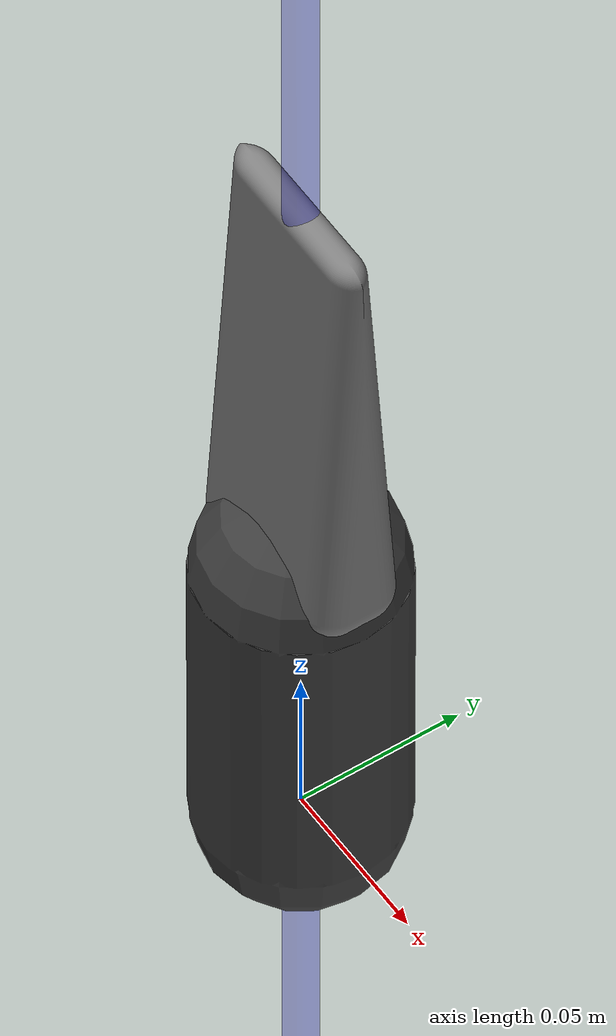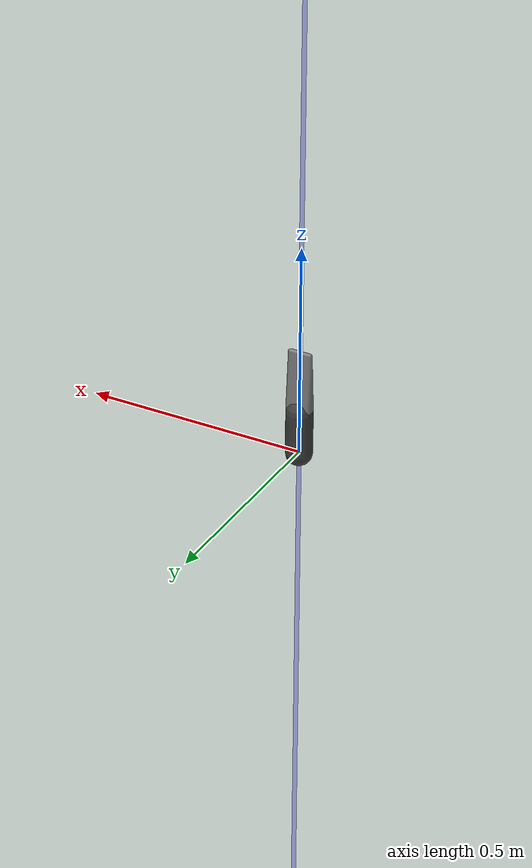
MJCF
<mujoco model="reach_hand">
    <asset>
        <mesh name="paddle" file="meshes/reach_gripper/paddle_gripper.stl" />
    </asset>
    <worldbody>
        <body name="reach_gripper" pos="0 0 0.05" quat="1.0 0 0 0" >
            <site name="ft_frame" pos="0 0 0" size="0.01 0.01 0.01" rgba="1 0 0 1" type="sphere" group="1"/>
            <inertial pos="0 0 0" mass="3e-2" diaginertia="1e-2 1e-2 1e-2"/>
            <geom type="capsule" pos="0 0.0 0.0" size="0.03 0.05" name="reach_link" solimp="0.9 0.95 0.001 0.5 2" solmix="10000" solref="0.005 1" group="1" rgba="0.25 0.25 0.25 1" />
            <body name="paddle" pos="0 0 0.05" quat="0.7071068 0 0 0.7071068">
                <inertial pos="0 0 0.02" mass="0.1" diaginertia="0.01 0.01 0.005" />
                <geom type="mesh" contype="0" conaffinity="0" group="1" mesh="paddle" name="ee_visual" rgba="0.499 0.499 0.499 1" />
                <geom type="mesh" group="0" conaffinity="1" contype="0" solref="0.02 1" friction="1 0.005 0.0001" condim="4" mesh="paddle" name="ee_collision"/>
            </body>

            <!-- This site was added for visualization. -->
            <body name="eef" pos="0 0 0.015" quat="1 0 0 0">
                <site name="grip_site" pos="0 0 0" size="0.01 0.01 0.01" rgba="1 0 0 0.5" type="sphere" group="1"/>
                <site name="ee_x" pos="0.1 0 0" size="0.005 .1"  quat="0.707105  0 0.707108 0 " rgba="1 0 0 0" type="cylinder" group="1"/>
                <site name="ee_y" pos="0 0.1 0" size="0.005 .1" quat="0.707105 0.707108 0 0" rgba="0 1 0 0" type="cylinder" group="1"/>
                <site name="ee_z" pos="0 0 0.1" size="0.005 .1" quat="1 0 0 0" rgba="0 0 1 0" type="cylinder" group="1"/>
                <!-- This site was added for visualization. -->
                <site name="grip_site_cylinder" pos="0 0 0" size="0.005 10" rgba="0 0 1 0.3" type="cylinder" group="1"/>
            </body>
        </body>
    </worldbody>
    <sensor>
        <force name="force_ee" site="ft_frame"/>
        <torque name="torque_ee" site="ft_frame"/>
    </sensor>
</mujoco>
